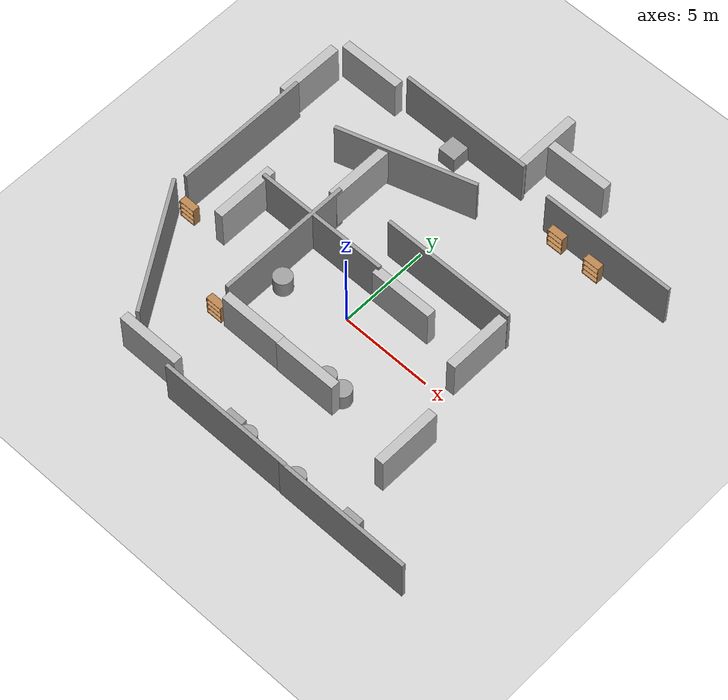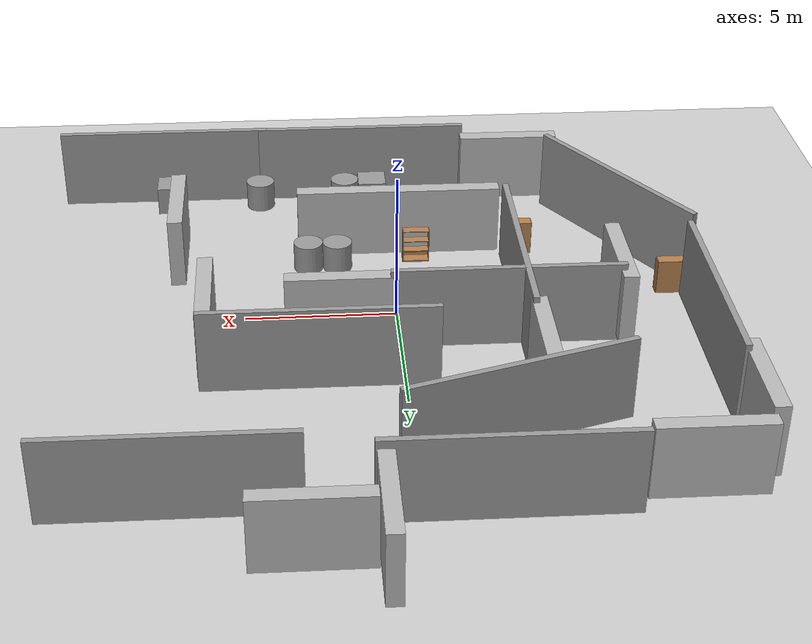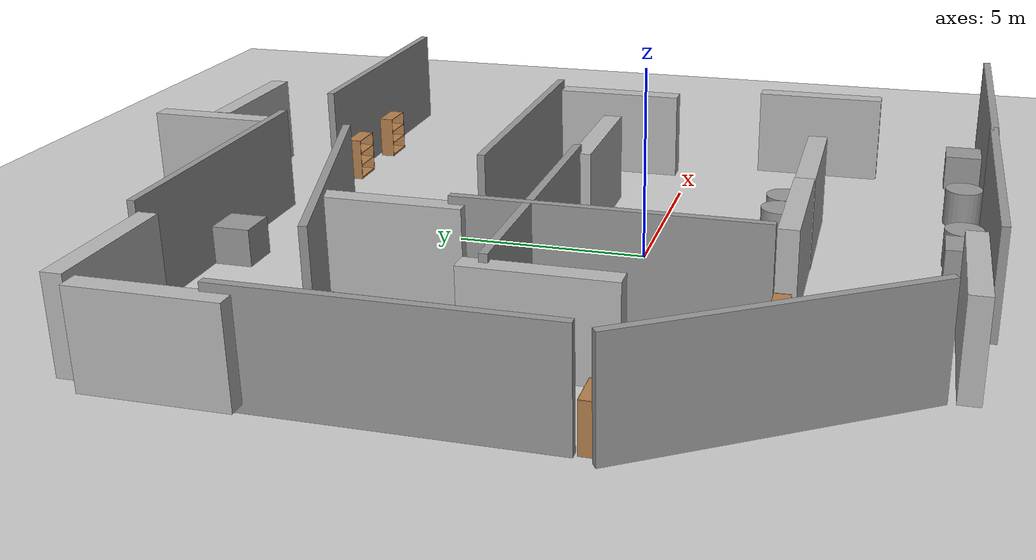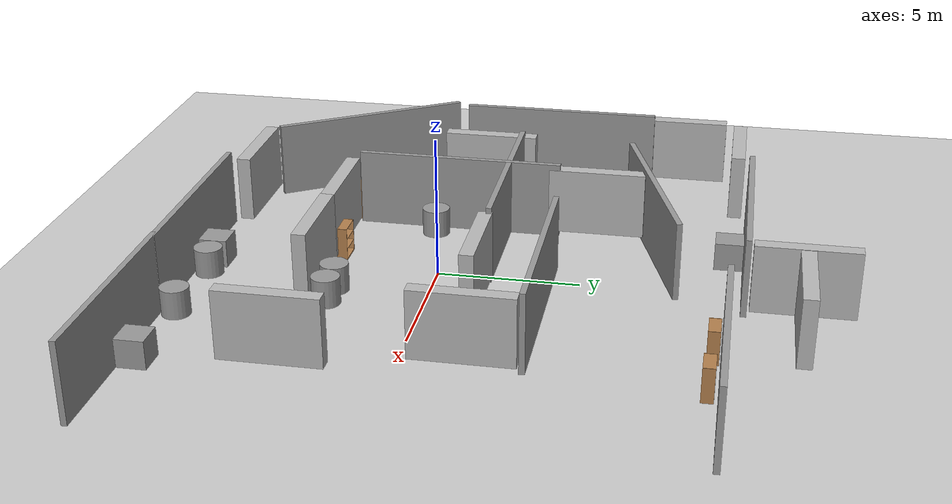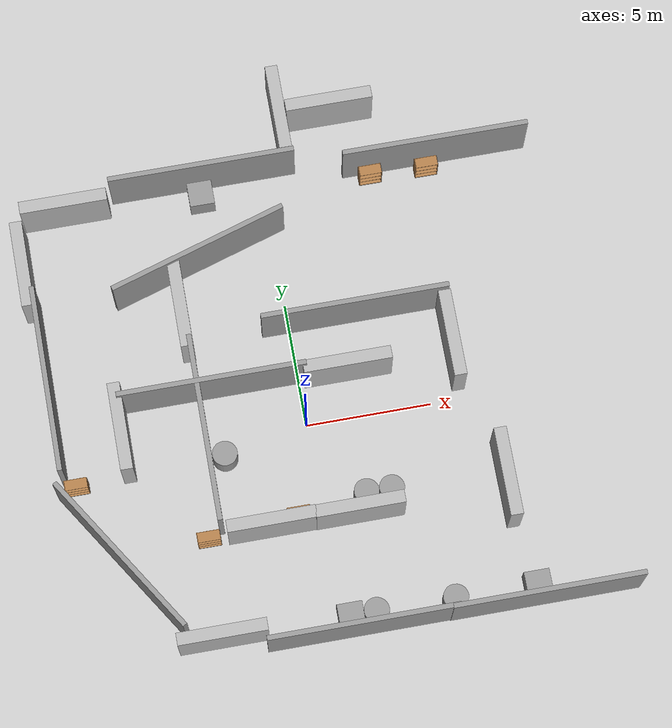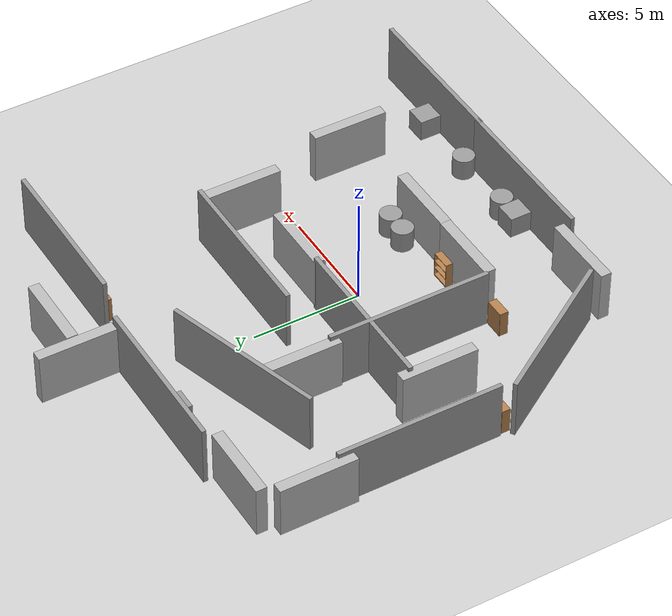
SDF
<sdf version="1.6">
 <world name="default">
  <model name="ground_plane">
   <static>1</static>
   <link name="link">
    <collision name="collision">
     <geometry><plane><normal>0 0 1</normal><size>100 100</size></plane></geometry>
     <surface><friction><ode><mu>100</mu><mu2>50</mu2></ode></friction></surface>
    </collision>
    <visual name="visual">
     <cast_shadows>0</cast_shadows>
     <geometry><plane><normal>0 0 1</normal><size>100 100</size></plane></geometry>
     <material>
      <script><uri>file://media/materials/scripts/gazebo.material</uri><name>Gazebo/Grey</name></script>
     </material>
    </visual>
   </link>
  </model>
  <model name="grey_wall">
   <static>1</static>
   <link name="link">
    <pose>0 0 1.4 0 -0 0</pose>
    <collision name="collision"><geometry><box><size>7.5 0.2 2.8</size></box></geometry></collision>
    <visual name="visual">
     <cast_shadows>0</cast_shadows>
     <geometry><box><size>7.5 0.2 2.8</size></box></geometry>
     <material>
      <script>
       <uri>model://grey_wall/materials/scripts</uri>
       <uri>model://grey_wall/materials/textures</uri>
       <name>vrc/grey_wall</name>
      </script>
     </material>
    </visual>
   </link>
   <pose>-2.38225 10.6143 0 0 -0 0</pose>
  </model>
  <model name="unit_box_0">
   <pose>-2.56657 10.0143 0.5 0 0 -1e-05</pose>
   <link name="link">
    <inertial>
     <mass>1</mass>
     <inertia>
      <ixx>0.166667</ixx>
      <ixy>0</ixy>
      <ixz>0</ixz>
      <iyy>0.166667</iyy>
      <iyz>0</iyz>
      <izz>0.166667</izz>
     </inertia>
    </inertial>
    <collision name="collision"><geometry><box><size>1 1 1</size></box></geometry></collision>
    <visual name="visual">
     <geometry><box><size>1 1 1</size></box></geometry>
     <material>
      <script><name>Gazebo/Grey</name><uri>file://media/materials/scripts/gazebo.material</uri></script>
     </material>
    </visual>
   </link>
  </model>
  <model name="grey_wall_0">
   <static>1</static>
   <link name="link">
    <pose>0 0 1.4 0 -0 0</pose>
    <collision name="collision"><geometry><box><size>7.5 0.2 2.8</size></box></geometry></collision>
    <visual name="visual">
     <cast_shadows>0</cast_shadows>
     <geometry><box><size>7.5 0.2 2.8</size></box></geometry>
     <material>
      <script>
       <uri>model://grey_wall/materials/scripts</uri>
       <uri>model://grey_wall/materials/textures</uri>
       <name>vrc/grey_wall</name>
      </script>
     </material>
    </visual>
   </link>
   <pose>7 10.0868 0 0 -0 0</pose>
  </model>
  <model name="bookshelf_0">
   <static>1</static>
   <link name="link">
    <inertial><mass>1</mass></inertial>
    <collision name="back">
     <pose>0 0.005 0.6 0 -0 0</pose>
     <geometry><box><size>0.9 0.01 1.2</size></box></geometry>
    </collision>
    <visual name="visual1">
     <pose>0 0.005 0.6 0 -0 0</pose>
     <geometry><box><size>0.9 0.01 1.2</size></box></geometry>
     <material>
      <script><uri>file://media/materials/scripts/gazebo.material</uri><name>Gazebo/Wood</name></script>
     </material>
    </visual>
    <collision name="left_side">
     <pose>0.45 -0.195 0.6 0 -0 0</pose>
     <geometry><box><size>0.02 0.4 1.2</size></box></geometry>
    </collision>
    <visual name="visual2">
     <pose>0.45 -0.195 0.6 0 -0 0</pose>
     <geometry><box><size>0.02 0.4 1.2</size></box></geometry>
     <material>
      <script><uri>file://media/materials/scripts/gazebo.material</uri><name>Gazebo/Wood</name></script>
     </material>
    </visual>
    <collision name="right_side">
     <pose>-0.45 -0.195 0.6 0 -0 0</pose>
     <geometry><box><size>0.02 0.4 1.2</size></box></geometry>
    </collision>
    <visual name="visual3">
     <pose>-0.45 -0.195 0.6 0 -0 0</pose>
     <geometry><box><size>0.02 0.4 1.2</size></box></geometry>
     <material>
      <script><uri>file://media/materials/scripts/gazebo.material</uri><name>Gazebo/Wood</name></script>
     </material>
    </visual>
    <collision name="bottom">
     <pose>0 -0.195 0.03 0 -0 0</pose>
     <geometry><box><size>0.88 0.4 0.06</size></box></geometry>
    </collision>
    <visual name="visual4">
     <pose>0 -0.195 0.03 0 -0 0</pose>
     <geometry><box><size>0.88 0.4 0.06</size></box></geometry>
     <material>
      <script><uri>file://media/materials/scripts/gazebo.material</uri><name>Gazebo/Wood</name></script>
     </material>
    </visual>
    <collision name="top">
     <pose>0 -0.195 1.19 0 -0 0</pose>
     <geometry><box><size>0.88 0.4 0.02</size></box></geometry>
    </collision>
    <visual name="visual5">
     <pose>0 -0.195 1.19 0 -0 0</pose>
     <geometry><box><size>0.88 0.4 0.02</size></box></geometry>
     <material>
      <script><uri>file://media/materials/scripts/gazebo.material</uri><name>Gazebo/Wood</name></script>
     </material>
    </visual>
    <collision name="low_shelf">
     <pose>0 -0.195 0.43 0 -0 0</pose>
     <geometry><box><size>0.88 0.4 0.02</size></box></geometry>
    </collision>
    <visual name="visual6">
     <pose>0 -0.195 0.43 0 -0 0</pose>
     <geometry><box><size>0.88 0.4 0.02</size></box></geometry>
     <material>
      <script><uri>file://media/materials/scripts/gazebo.material</uri><name>Gazebo/Wood</name></script>
     </material>
    </visual>
    <collision name="high_shelf">
     <pose>0 -0.195 0.8 0 -0 0</pose>
     <geometry><box><size>0.88 0.4 0.02</size></box></geometry>
    </collision>
    <visual name="visual7">
     <pose>0 -0.195 0.8 0 -0 0</pose>
     <geometry><box><size>0.88 0.4 0.02</size></box></geometry>
     <material>
      <script><uri>file://media/materials/scripts/gazebo.material</uri><name>Gazebo/Wood</name></script>
     </material>
    </visual>
   </link>
   <pose>4.33067 9.93272 0 0 -0 0</pose>
  </model>
  <model name="bookshelf_1">
   <static>1</static>
   <link name="link">
    <inertial><mass>1</mass></inertial>
    <collision name="back">
     <pose>0 0.005 0.6 0 -0 0</pose>
     <geometry><box><size>0.9 0.01 1.2</size></box></geometry>
    </collision>
    <visual name="visual1">
     <pose>0 0.005 0.6 0 -0 0</pose>
     <geometry><box><size>0.9 0.01 1.2</size></box></geometry>
     <material>
      <script><uri>file://media/materials/scripts/gazebo.material</uri><name>Gazebo/Wood</name></script>
     </material>
    </visual>
    <collision name="left_side">
     <pose>0.45 -0.195 0.6 0 -0 0</pose>
     <geometry><box><size>0.02 0.4 1.2</size></box></geometry>
    </collision>
    <visual name="visual2">
     <pose>0.45 -0.195 0.6 0 -0 0</pose>
     <geometry><box><size>0.02 0.4 1.2</size></box></geometry>
     <material>
      <script><uri>file://media/materials/scripts/gazebo.material</uri><name>Gazebo/Wood</name></script>
     </material>
    </visual>
    <collision name="right_side">
     <pose>-0.45 -0.195 0.6 0 -0 0</pose>
     <geometry><box><size>0.02 0.4 1.2</size></box></geometry>
    </collision>
    <visual name="visual3">
     <pose>-0.45 -0.195 0.6 0 -0 0</pose>
     <geometry><box><size>0.02 0.4 1.2</size></box></geometry>
     <material>
      <script><uri>file://media/materials/scripts/gazebo.material</uri><name>Gazebo/Wood</name></script>
     </material>
    </visual>
    <collision name="bottom">
     <pose>0 -0.195 0.03 0 -0 0</pose>
     <geometry><box><size>0.88 0.4 0.06</size></box></geometry>
    </collision>
    <visual name="visual4">
     <pose>0 -0.195 0.03 0 -0 0</pose>
     <geometry><box><size>0.88 0.4 0.06</size></box></geometry>
     <material>
      <script><uri>file://media/materials/scripts/gazebo.material</uri><name>Gazebo/Wood</name></script>
     </material>
    </visual>
    <collision name="top">
     <pose>0 -0.195 1.19 0 -0 0</pose>
     <geometry><box><size>0.88 0.4 0.02</size></box></geometry>
    </collision>
    <visual name="visual5">
     <pose>0 -0.195 1.19 0 -0 0</pose>
     <geometry><box><size>0.88 0.4 0.02</size></box></geometry>
     <material>
      <script><uri>file://media/materials/scripts/gazebo.material</uri><name>Gazebo/Wood</name></script>
     </material>
    </visual>
    <collision name="low_shelf">
     <pose>0 -0.195 0.43 0 -0 0</pose>
     <geometry><box><size>0.88 0.4 0.02</size></box></geometry>
    </collision>
    <visual name="visual6">
     <pose>0 -0.195 0.43 0 -0 0</pose>
     <geometry><box><size>0.88 0.4 0.02</size></box></geometry>
     <material>
      <script><uri>file://media/materials/scripts/gazebo.material</uri><name>Gazebo/Wood</name></script>
     </material>
    </visual>
    <collision name="high_shelf">
     <pose>0 -0.195 0.8 0 -0 0</pose>
     <geometry><box><size>0.88 0.4 0.02</size></box></geometry>
    </collision>
    <visual name="visual7">
     <pose>0 -0.195 0.8 0 -0 0</pose>
     <geometry><box><size>0.88 0.4 0.02</size></box></geometry>
     <material>
      <script><uri>file://media/materials/scripts/gazebo.material</uri><name>Gazebo/Wood</name></script>
     </material>
    </visual>
   </link>
   <pose>6.61961 9.86481 0 0 -0 0</pose>
  </model>
  <model name="grey_wall_1">
   <static>1</static>
   <link name="link">
    <pose>0 0 1.4 0 -0 0</pose>
    <collision name="collision"><geometry><box><size>7.5 0.2 2.8</size></box></geometry></collision>
    <visual name="visual">
     <cast_shadows>0</cast_shadows>
     <geometry><box><size>7.5 0.2 2.8</size></box></geometry>
     <material>
      <script>
       <uri>model://grey_wall/materials/scripts</uri>
       <uri>model://grey_wall/materials/textures</uri>
       <name>vrc/grey_wall</name>
      </script>
     </material>
    </visual>
   </link>
   <pose>-9.75377 3 0 0 -0 1.57</pose>
  </model>
  <model name="grey_wall_3">
   <static>1</static>
   <link name="link">
    <pose>0 0 1.4 0 -0 0</pose>
    <collision name="collision"><geometry><box><size>7.5 0.2 2.8</size></box></geometry></collision>
    <visual name="visual">
     <cast_shadows>0</cast_shadows>
     <geometry><box><size>7.5 0.2 2.8</size></box></geometry>
     <material>
      <script>
       <uri>model://grey_wall/materials/scripts</uri>
       <uri>model://grey_wall/materials/textures</uri>
       <name>vrc/grey_wall</name>
      </script>
     </material>
    </visual>
   </link>
   <pose>-8 -4.35516 0 0 0 -1</pose>
  </model>
  <model name="bookshelf_2">
   <static>1</static>
   <link name="link">
    <inertial><mass>1</mass></inertial>
    <collision name="back">
     <pose>0 0.005 0.6 0 -0 0</pose>
     <geometry><box><size>0.9 0.01 1.2</size></box></geometry>
    </collision>
    <visual name="visual1">
     <pose>0 0.005 0.6 0 -0 0</pose>
     <geometry><box><size>0.9 0.01 1.2</size></box></geometry>
     <material>
      <script><uri>file://media/materials/scripts/gazebo.material</uri><name>Gazebo/Wood</name></script>
     </material>
    </visual>
    <collision name="left_side">
     <pose>0.45 -0.195 0.6 0 -0 0</pose>
     <geometry><box><size>0.02 0.4 1.2</size></box></geometry>
    </collision>
    <visual name="visual2">
     <pose>0.45 -0.195 0.6 0 -0 0</pose>
     <geometry><box><size>0.02 0.4 1.2</size></box></geometry>
     <material>
      <script><uri>file://media/materials/scripts/gazebo.material</uri><name>Gazebo/Wood</name></script>
     </material>
    </visual>
    <collision name="right_side">
     <pose>-0.45 -0.195 0.6 0 -0 0</pose>
     <geometry><box><size>0.02 0.4 1.2</size></box></geometry>
    </collision>
    <visual name="visual3">
     <pose>-0.45 -0.195 0.6 0 -0 0</pose>
     <geometry><box><size>0.02 0.4 1.2</size></box></geometry>
     <material>
      <script><uri>file://media/materials/scripts/gazebo.material</uri><name>Gazebo/Wood</name></script>
     </material>
    </visual>
    <collision name="bottom">
     <pose>0 -0.195 0.03 0 -0 0</pose>
     <geometry><box><size>0.88 0.4 0.06</size></box></geometry>
    </collision>
    <visual name="visual4">
     <pose>0 -0.195 0.03 0 -0 0</pose>
     <geometry><box><size>0.88 0.4 0.06</size></box></geometry>
     <material>
      <script><uri>file://media/materials/scripts/gazebo.material</uri><name>Gazebo/Wood</name></script>
     </material>
    </visual>
    <collision name="top">
     <pose>0 -0.195 1.19 0 -0 0</pose>
     <geometry><box><size>0.88 0.4 0.02</size></box></geometry>
    </collision>
    <visual name="visual5">
     <pose>0 -0.195 1.19 0 -0 0</pose>
     <geometry><box><size>0.88 0.4 0.02</size></box></geometry>
     <material>
      <script><uri>file://media/materials/scripts/gazebo.material</uri><name>Gazebo/Wood</name></script>
     </material>
    </visual>
    <collision name="low_shelf">
     <pose>0 -0.195 0.43 0 -0 0</pose>
     <geometry><box><size>0.88 0.4 0.02</size></box></geometry>
    </collision>
    <visual name="visual6">
     <pose>0 -0.195 0.43 0 -0 0</pose>
     <geometry><box><size>0.88 0.4 0.02</size></box></geometry>
     <material>
      <script><uri>file://media/materials/scripts/gazebo.material</uri><name>Gazebo/Wood</name></script>
     </material>
    </visual>
    <collision name="high_shelf">
     <pose>0 -0.195 0.8 0 -0 0</pose>
     <geometry><box><size>0.88 0.4 0.02</size></box></geometry>
    </collision>
    <visual name="visual7">
     <pose>0 -0.195 0.8 0 -0 0</pose>
     <geometry><box><size>0.88 0.4 0.02</size></box></geometry>
     <material>
      <script><uri>file://media/materials/scripts/gazebo.material</uri><name>Gazebo/Wood</name></script>
     </material>
    </visual>
   </link>
   <pose>-9.31763 -0.823103 0 0 -0 0</pose>
  </model>
  <model name="grey_wall_4">
   <static>1</static>
   <link name="link">
    <pose>0 0 1.4 0 -0 0</pose>
    <collision name="collision"><geometry><box><size>7.5 0.2 2.8</size></box></geometry></collision>
    <visual name="visual">
     <cast_shadows>0</cast_shadows>
     <geometry><box><size>7.5 0.2 2.8</size></box></geometry>
     <material>
      <script>
       <uri>model://grey_wall/materials/scripts</uri>
       <uri>model://grey_wall/materials/textures</uri>
       <name>vrc/grey_wall</name>
      </script>
     </material>
    </visual>
   </link>
   <pose>0.732873 -8.54775 0 0 -0 0</pose>
  </model>
  <model name="grey_wall_5">
   <static>1</static>
   <link name="link">
    <pose>0 0 1.4 0 -0 0</pose>
    <collision name="collision"><geometry><box><size>7.5 0.2 2.8</size></box></geometry></collision>
    <visual name="visual">
     <cast_shadows>0</cast_shadows>
     <geometry><box><size>7.5 0.2 2.8</size></box></geometry>
     <material>
      <script>
       <uri>model://grey_wall/materials/scripts</uri>
       <uri>model://grey_wall/materials/textures</uri>
       <name>vrc/grey_wall</name>
      </script>
     </material>
    </visual>
   </link>
   <pose>7.91479 -8.57466 0 0 -0 0</pose>
  </model>
  <model name="unit_box_1_1">
   <pose>0.35925 -7.94761 0.499995 0 1e-05 0.000272</pose>
   <link name="link">
    <inertial>
     <mass>1</mass>
     <inertia>
      <ixx>0.166667</ixx>
      <ixy>0</ixy>
      <ixz>0</ixz>
      <iyy>0.166667</iyy>
      <iyz>0</iyz>
      <izz>0.166667</izz>
     </inertia>
    </inertial>
    <collision name="collision"><geometry><box><size>1 1 1</size></box></geometry></collision>
    <visual name="visual">
     <geometry><box><size>1 1 1</size></box></geometry>
     <material>
      <script><name>Gazebo/Grey</name><uri>file://media/materials/scripts/gazebo.material</uri></script>
     </material>
    </visual>
   </link>
  </model>
  <model name="unit_cylinder_0_1">
   <pose>1.35926 -7.91818 0.499994 -3e-06 -1e-06 -0.00033</pose>
   <link name="link">
    <inertial>
     <mass>1</mass>
     <inertia><ixx>0.145833</ixx><ixy>0</ixy><ixz>0</ixz><iyy>0.145833</iyy><iyz>0</iyz><izz>0.125</izz></inertia>
    </inertial>
    <collision name="collision">
     <geometry><cylinder><radius>0.5</radius><length>1</length></cylinder></geometry>
    </collision>
    <visual name="visual">
     <geometry><cylinder><radius>0.5</radius><length>1</length></cylinder></geometry>
     <material>
      <script><name>Gazebo/Grey</name><uri>file://media/materials/scripts/gazebo.material</uri></script>
     </material>
    </visual>
   </link>
  </model>
  <model name="unit_cylinder_0_2">
   <pose>4.46936 -7.94617 0.499994 -3e-06 -1e-06 -0</pose>
   <link name="link">
    <inertial>
     <mass>1</mass>
     <inertia><ixx>0.145833</ixx><ixy>0</ixy><ixz>0</ixz><iyy>0.145833</iyy><iyz>0</iyz><izz>0.125</izz></inertia>
    </inertial>
    <collision name="collision">
     <geometry><cylinder><radius>0.5</radius><length>1</length></cylinder></geometry>
    </collision>
    <visual name="visual">
     <geometry><cylinder><radius>0.5</radius><length>1</length></cylinder></geometry>
     <material>
      <script><name>Gazebo/Grey</name><uri>file://media/materials/scripts/gazebo.material</uri></script>
     </material>
    </visual>
   </link>
  </model>
  <model name="unit_box_1_2">
   <pose>7.72225 -7.97465 0.499995 0 -1e-05 7e-06</pose>
   <link name="link">
    <inertial>
     <mass>1</mass>
     <inertia>
      <ixx>0.166667</ixx>
      <ixy>0</ixy>
      <ixz>0</ixz>
      <iyy>0.166667</iyy>
      <iyz>0</iyz>
      <izz>0.166667</izz>
     </inertia>
    </inertial>
    <collision name="collision"><geometry><box><size>1 1 1</size></box></geometry></collision>
    <visual name="visual">
     <geometry><box><size>1 1 1</size></box></geometry>
     <material>
      <script><name>Gazebo/Grey</name><uri>file://media/materials/scripts/gazebo.material</uri></script>
     </material>
    </visual>
   </link>
  </model>
  <model name="grey_wall_6">
   <static>1</static>
   <link name="link">
    <pose>0 0 1.4 0 -0 0</pose>
    <collision name="collision"><geometry><box><size>7.5 0.2 2.8</size></box></geometry></collision>
    <visual name="visual">
     <cast_shadows>0</cast_shadows>
     <geometry><box><size>7.5 0.2 2.8</size></box></geometry>
     <material>
      <script>
       <uri>model://grey_wall/materials/scripts</uri>
       <uri>model://grey_wall/materials/textures</uri>
       <name>vrc/grey_wall</name>
      </script>
     </material>
    </visual>
   </link>
   <pose>-3.07893 7.22093 0 0 -0 0.3</pose>
  </model>
  <model name="grey_wall_7">
   <static>1</static>
   <link name="link">
    <pose>0 0 1.4 0 -0 0</pose>
    <collision name="collision"><geometry><box><size>7.5 0.2 2.8</size></box></geometry></collision>
    <visual name="visual">
     <cast_shadows>0</cast_shadows>
     <geometry><box><size>7.5 0.2 2.8</size></box></geometry>
     <material>
      <script>
       <uri>model://grey_wall/materials/scripts</uri>
       <uri>model://grey_wall/materials/textures</uri>
       <name>vrc/grey_wall</name>
      </script>
     </material>
    </visual>
   </link>
   <pose>-4 0 0 0 -0 1.57</pose>
  </model>
  <model name="grey_wall_8">
   <static>1</static>
   <link name="link">
    <pose>0 0 1.4 0 -0 0</pose>
    <collision name="collision"><geometry><box><size>7.5 0.2 2.8</size></box></geometry></collision>
    <visual name="visual">
     <cast_shadows>0</cast_shadows>
     <geometry><box><size>7.5 0.2 2.8</size></box></geometry>
     <material>
      <script>
       <uri>model://grey_wall/materials/scripts</uri>
       <uri>model://grey_wall/materials/textures</uri>
       <name>vrc/grey_wall</name>
      </script>
     </material>
    </visual>
   </link>
   <pose>-3.41531 1.85779 0 0 -0 0</pose>
  </model>
  <model name="bookshelf_3">
   <static>1</static>
   <link name="link">
    <inertial><mass>1</mass></inertial>
    <collision name="back">
     <pose>0 0.005 0.6 0 -0 0</pose>
     <geometry><box><size>0.9 0.01 1.2</size></box></geometry>
    </collision>
    <visual name="visual1">
     <pose>0 0.005 0.6 0 -0 0</pose>
     <geometry><box><size>0.9 0.01 1.2</size></box></geometry>
     <material>
      <script><uri>file://media/materials/scripts/gazebo.material</uri><name>Gazebo/Wood</name></script>
     </material>
    </visual>
    <collision name="left_side">
     <pose>0.45 -0.195 0.6 0 -0 0</pose>
     <geometry><box><size>0.02 0.4 1.2</size></box></geometry>
    </collision>
    <visual name="visual2">
     <pose>0.45 -0.195 0.6 0 -0 0</pose>
     <geometry><box><size>0.02 0.4 1.2</size></box></geometry>
     <material>
      <script><uri>file://media/materials/scripts/gazebo.material</uri><name>Gazebo/Wood</name></script>
     </material>
    </visual>
    <collision name="right_side">
     <pose>-0.45 -0.195 0.6 0 -0 0</pose>
     <geometry><box><size>0.02 0.4 1.2</size></box></geometry>
    </collision>
    <visual name="visual3">
     <pose>-0.45 -0.195 0.6 0 -0 0</pose>
     <geometry><box><size>0.02 0.4 1.2</size></box></geometry>
     <material>
      <script><uri>file://media/materials/scripts/gazebo.material</uri><name>Gazebo/Wood</name></script>
     </material>
    </visual>
    <collision name="bottom">
     <pose>0 -0.195 0.03 0 -0 0</pose>
     <geometry><box><size>0.88 0.4 0.06</size></box></geometry>
    </collision>
    <visual name="visual4">
     <pose>0 -0.195 0.03 0 -0 0</pose>
     <geometry><box><size>0.88 0.4 0.06</size></box></geometry>
     <material>
      <script><uri>file://media/materials/scripts/gazebo.material</uri><name>Gazebo/Wood</name></script>
     </material>
    </visual>
    <collision name="top">
     <pose>0 -0.195 1.19 0 -0 0</pose>
     <geometry><box><size>0.88 0.4 0.02</size></box></geometry>
    </collision>
    <visual name="visual5">
     <pose>0 -0.195 1.19 0 -0 0</pose>
     <geometry><box><size>0.88 0.4 0.02</size></box></geometry>
     <material>
      <script><uri>file://media/materials/scripts/gazebo.material</uri><name>Gazebo/Wood</name></script>
     </material>
    </visual>
    <collision name="low_shelf">
     <pose>0 -0.195 0.43 0 -0 0</pose>
     <geometry><box><size>0.88 0.4 0.02</size></box></geometry>
    </collision>
    <visual name="visual6">
     <pose>0 -0.195 0.43 0 -0 0</pose>
     <geometry><box><size>0.88 0.4 0.02</size></box></geometry>
     <material>
      <script><uri>file://media/materials/scripts/gazebo.material</uri><name>Gazebo/Wood</name></script>
     </material>
    </visual>
    <collision name="high_shelf">
     <pose>0 -0.195 0.8 0 -0 0</pose>
     <geometry><box><size>0.88 0.4 0.02</size></box></geometry>
    </collision>
    <visual name="visual7">
     <pose>0 -0.195 0.8 0 -0 0</pose>
     <geometry><box><size>0.88 0.4 0.02</size></box></geometry>
     <material>
      <script><uri>file://media/materials/scripts/gazebo.material</uri><name>Gazebo/Wood</name></script>
     </material>
    </visual>
   </link>
   <pose>-4.55124 -3.7724 0 0 -0 0</pose>
  </model>
  <model name="unit_cylinder_0_3">
   <pose>-3.38655 -0.778176 0.499996 3e-06 1e-06 -0</pose>
   <link name="link">
    <inertial>
     <mass>1</mass>
     <inertia><ixx>0.145833</ixx><ixy>0</ixy><ixz>0</ixz><iyy>0.145833</iyy><iyz>0</iyz><izz>0.125</izz></inertia>
    </inertial>
    <collision name="collision">
     <geometry><cylinder><radius>0.5</radius><length>1</length></cylinder></geometry>
    </collision>
    <visual name="visual">
     <geometry><cylinder><radius>0.5</radius><length>1</length></cylinder></geometry>
     <material>
      <script><name>Gazebo/Grey</name><uri>file://media/materials/scripts/gazebo.material</uri></script>
     </material>
    </visual>
   </link>
  </model>
  <model name="bookshelf_4">
   <static>1</static>
   <link name="link">
    <inertial><mass>1</mass></inertial>
    <collision name="back">
     <pose>0 0.005 0.6 0 -0 0</pose>
     <geometry><box><size>0.9 0.01 1.2</size></box></geometry>
    </collision>
    <visual name="visual1">
     <pose>0 0.005 0.6 0 -0 0</pose>
     <geometry><box><size>0.9 0.01 1.2</size></box></geometry>
     <material>
      <script><uri>file://media/materials/scripts/gazebo.material</uri><name>Gazebo/Wood</name></script>
     </material>
    </visual>
    <collision name="left_side">
     <pose>0.45 -0.195 0.6 0 -0 0</pose>
     <geometry><box><size>0.02 0.4 1.2</size></box></geometry>
    </collision>
    <visual name="visual2">
     <pose>0.45 -0.195 0.6 0 -0 0</pose>
     <geometry><box><size>0.02 0.4 1.2</size></box></geometry>
     <material>
      <script><uri>file://media/materials/scripts/gazebo.material</uri><name>Gazebo/Wood</name></script>
     </material>
    </visual>
    <collision name="right_side">
     <pose>-0.45 -0.195 0.6 0 -0 0</pose>
     <geometry><box><size>0.02 0.4 1.2</size></box></geometry>
    </collision>
    <visual name="visual3">
     <pose>-0.45 -0.195 0.6 0 -0 0</pose>
     <geometry><box><size>0.02 0.4 1.2</size></box></geometry>
     <material>
      <script><uri>file://media/materials/scripts/gazebo.material</uri><name>Gazebo/Wood</name></script>
     </material>
    </visual>
    <collision name="bottom">
     <pose>0 -0.195 0.03 0 -0 0</pose>
     <geometry><box><size>0.88 0.4 0.06</size></box></geometry>
    </collision>
    <visual name="visual4">
     <pose>0 -0.195 0.03 0 -0 0</pose>
     <geometry><box><size>0.88 0.4 0.06</size></box></geometry>
     <material>
      <script><uri>file://media/materials/scripts/gazebo.material</uri><name>Gazebo/Wood</name></script>
     </material>
    </visual>
    <collision name="top">
     <pose>0 -0.195 1.19 0 -0 0</pose>
     <geometry><box><size>0.88 0.4 0.02</size></box></geometry>
    </collision>
    <visual name="visual5">
     <pose>0 -0.195 1.19 0 -0 0</pose>
     <geometry><box><size>0.88 0.4 0.02</size></box></geometry>
     <material>
      <script><uri>file://media/materials/scripts/gazebo.material</uri><name>Gazebo/Wood</name></script>
     </material>
    </visual>
    <collision name="low_shelf">
     <pose>0 -0.195 0.43 0 -0 0</pose>
     <geometry><box><size>0.88 0.4 0.02</size></box></geometry>
    </collision>
    <visual name="visual6">
     <pose>0 -0.195 0.43 0 -0 0</pose>
     <geometry><box><size>0.88 0.4 0.02</size></box></geometry>
     <material>
      <script><uri>file://media/materials/scripts/gazebo.material</uri><name>Gazebo/Wood</name></script>
     </material>
    </visual>
    <collision name="high_shelf">
     <pose>0 -0.195 0.8 0 -0 0</pose>
     <geometry><box><size>0.88 0.4 0.02</size></box></geometry>
    </collision>
    <visual name="visual7">
     <pose>0 -0.195 0.8 0 -0 0</pose>
     <geometry><box><size>0.88 0.4 0.02</size></box></geometry>
     <material>
      <script><uri>file://media/materials/scripts/gazebo.material</uri><name>Gazebo/Wood</name></script>
     </material>
    </visual>
   </link>
   <pose>-0.924476 -3.8 0 0 -0 3.14</pose>
  </model>
  <model name="unit_cylinder_0_4">
   <pose>1.82135 -3.23102 0.50045 -0.000753 -0.000505 -0.030917</pose>
   <link name="link">
    <inertial>
     <mass>1</mass>
     <inertia><ixx>0.145833</ixx><ixy>0</ixy><ixz>0</ixz><iyy>0.145833</iyy><iyz>0</iyz><izz>0.125</izz></inertia>
    </inertial>
    <collision name="collision">
     <geometry><cylinder><radius>0.5</radius><length>1</length></cylinder></geometry>
    </collision>
    <visual name="visual">
     <geometry><cylinder><radius>0.5</radius><length>1</length></cylinder></geometry>
     <material>
      <script><name>Gazebo/Grey</name><uri>file://media/materials/scripts/gazebo.material</uri></script>
     </material>
    </visual>
   </link>
  </model>
  <model name="unit_cylinder_0_5">
   <pose>2.8235 -3.25312 0.499993 -3e-06 -1e-06 -0.035597</pose>
   <link name="link">
    <inertial>
     <mass>1</mass>
     <inertia><ixx>0.145833</ixx><ixy>0</ixy><ixz>0</ixz><iyy>0.145833</iyy><iyz>0</iyz><izz>0.125</izz></inertia>
    </inertial>
    <collision name="collision">
     <geometry><cylinder><radius>0.5</radius><length>1</length></cylinder></geometry>
    </collision>
    <visual name="visual">
     <geometry><cylinder><radius>0.5</radius><length>1</length></cylinder></geometry>
     <material>
      <script><name>Gazebo/Grey</name><uri>file://media/materials/scripts/gazebo.material</uri></script>
     </material>
    </visual>
   </link>
  </model>
  <model name="grey_wall_9">
   <static>1</static>
   <link name="link">
    <pose>0 0 1.4 0 -0 0</pose>
    <collision name="collision"><geometry><box><size>7.5 0.2 2.8</size></box></geometry></collision>
    <visual name="visual">
     <cast_shadows>0</cast_shadows>
     <geometry><box><size>7.5 0.2 2.8</size></box></geometry>
     <material>
      <script>
       <uri>model://grey_wall/materials/scripts</uri>
       <uri>model://grey_wall/materials/textures</uri>
       <name>vrc/grey_wall</name>
      </script>
     </material>
    </visual>
   </link>
   <pose>2.64896 3.98891 0 0 -0 0</pose>
  </model>
  <model name="mywall1">
   <static>1</static>
   <link name="link">
    <pose>0 0 1.4 0 -0 0</pose>
    <collision name="collision"><geometry><box><size>3.5 0.5 2.4</size></box></geometry></collision>
    <visual name="visual">
     <cast_shadows>0</cast_shadows>
     <geometry><box><size>3.5 0.5 2.4</size></box></geometry>
     <material>
      <script>
       <uri>model://mywall1/materials/scripts</uri>
       <uri>model://mywall1/materials/textures</uri>
       <name>vrc/mywall1</name>
      </script>
     </material>
    </visual>
   </link>
   <pose>-10 7.81498 0 0 -0 1.57</pose>
  </model>
  <model name="mywall1_0">
   <static>1</static>
   <link name="link">
    <pose>0 0 1.4 0 -0 0</pose>
    <collision name="collision"><geometry><box><size>3.5 0.5 2.4</size></box></geometry></collision>
    <visual name="visual">
     <cast_shadows>0</cast_shadows>
     <geometry><box><size>3.5 0.5 2.4</size></box></geometry>
     <material>
      <script>
       <uri>model://mywall1/materials/scripts</uri>
       <uri>model://mywall1/materials/textures</uri>
       <name>vrc/mywall1</name>
      </script>
     </material>
    </visual>
   </link>
   <pose>-4.64369 -7.96757 0 0 -0 0</pose>
  </model>
  <model name="mywall1_clone">
   <static>1</static>
   <link name="link">
    <pose>0 0 1.4 0 -0 0</pose>
    <collision name="collision"><geometry><box><size>3.5 0.5 2.4</size></box></geometry></collision>
    <visual name="visual">
     <cast_shadows>0</cast_shadows>
     <geometry><box><size>3.5 0.5 2.4</size></box></geometry>
     <material>
      <script>
       <uri>model://mywall1/materials/scripts</uri>
       <uri>model://mywall1/materials/textures</uri>
       <name>vrc/mywall1</name>
      </script>
     </material>
    </visual>
   </link>
   <pose>-4.12656 5.09862 0 0 -0 1.57</pose>
  </model>
  <model name="mywall1_0_clone">
   <static>1</static>
   <link name="link">
    <pose>0 0 1.4 0 -0 0</pose>
    <collision name="collision"><geometry><box><size>3.5 0.5 2.4</size></box></geometry></collision>
    <visual name="visual">
     <cast_shadows>0</cast_shadows>
     <geometry><box><size>3.5 0.5 2.4</size></box></geometry>
     <material>
      <script>
       <uri>model://mywall1/materials/scripts</uri>
       <uri>model://mywall1/materials/textures</uri>
       <name>vrc/mywall1</name>
      </script>
     </material>
    </visual>
   </link>
   <pose>1.93916 1.732 0 0 -0 0</pose>
  </model>
  <model name="mywall0_1">
   <static>1</static>
   <link name="link">
    <pose>0 0 1.4 0 -0 0</pose>
    <collision name="collision"><geometry><box><size>3.5 0.5 2.4</size></box></geometry></collision>
    <visual name="visual">
     <cast_shadows>0</cast_shadows>
     <geometry><box><size>3.5 0.5 2.4</size></box></geometry>
     <material>
      <script>
       <uri>model://mywall0/materials/scripts</uri>
       <uri>model://mywall0/materials/textures</uri>
       <name>vrc/mywall0</name>
      </script>
     </material>
    </visual>
   </link>
   <pose>-8.01801 10.1087 0 0 -0 0</pose>
  </model>
  <model name="mywall0_3">
   <static>1</static>
   <link name="link">
    <pose>0 0 1.4 0 -0 0</pose>
    <collision name="collision"><geometry><box><size>3.5 0.5 2.4</size></box></geometry></collision>
    <visual name="visual">
     <cast_shadows>0</cast_shadows>
     <geometry><box><size>3.5 0.5 2.4</size></box></geometry>
     <material>
      <script>
       <uri>model://mywall0/materials/scripts</uri>
       <uri>model://mywall0/materials/textures</uri>
       <name>vrc/mywall0</name>
      </script>
     </material>
    </visual>
   </link>
   <pose>-2.05825 -3.99563 0 0 -0 0</pose>
  </model>
  <model name="mywall1_1">
   <static>1</static>
   <link name="link">
    <pose>0 0 1.4 0 -0 0</pose>
    <collision name="collision"><geometry><box><size>3.5 0.5 2.4</size></box></geometry></collision>
    <visual name="visual">
     <cast_shadows>0</cast_shadows>
     <geometry><box><size>3.5 0.5 2.4</size></box></geometry>
     <material>
      <script>
       <uri>model://mywall1/materials/scripts</uri>
       <uri>model://mywall1/materials/textures</uri>
       <name>vrc/mywall1</name>
      </script>
     </material>
    </visual>
   </link>
   <pose>1.40479 -4.01421 0 0 -0 0</pose>
  </model>
  <model name="mywall0_4">
   <static>1</static>
   <link name="link">
    <pose>0 0 1.4 0 -0 0</pose>
    <collision name="collision"><geometry><box><size>3.5 0.5 2.4</size></box></geometry></collision>
    <visual name="visual">
     <cast_shadows>0</cast_shadows>
     <geometry><box><size>3.5 0.5 2.4</size></box></geometry>
     <material>
      <script>
       <uri>model://mywall0/materials/scripts</uri>
       <uri>model://mywall0/materials/textures</uri>
       <name>vrc/mywall0</name>
      </script>
     </material>
    </visual>
   </link>
   <pose>-7.21106 0.63994 0 0 -0 1.57</pose>
  </model>
  <model name="mywall0_5">
   <static>1</static>
   <link name="link">
    <pose>0 0 1.4 0 -0 0</pose>
    <collision name="collision"><geometry><box><size>3.5 0.5 2.4</size></box></geometry></collision>
    <visual name="visual">
     <cast_shadows>0</cast_shadows>
     <geometry><box><size>3.5 0.5 2.4</size></box></geometry>
     <material>
      <script>
       <uri>model://mywall0/materials/scripts</uri>
       <uri>model://mywall0/materials/textures</uri>
       <name>vrc/mywall0</name>
      </script>
     </material>
    </visual>
   </link>
   <pose>7.25641 -3.74588 0 0 -0 1.57</pose>
  </model>
  <model name="mywall0_5_clone">
   <static>1</static>
   <link name="link">
    <pose>0 0 1.4 0 -0 0</pose>
    <collision name="collision"><geometry><box><size>3.5 0.5 2.4</size></box></geometry></collision>
    <visual name="visual">
     <cast_shadows>0</cast_shadows>
     <geometry><box><size>3.5 0.5 2.4</size></box></geometry>
     <material>
      <script>
       <uri>model://mywall0/materials/scripts</uri>
       <uri>model://mywall0/materials/textures</uri>
       <name>vrc/mywall0</name>
      </script>
     </material>
    </visual>
   </link>
   <pose>6.17861 2.08716 0 0 -0 1.57</pose>
  </model>
  <model name="mywall0_4_clone">
   <static>1</static>
   <link name="link">
    <pose>0 0 1.4 0 -0 0</pose>
    <collision name="collision"><geometry><box><size>3.5 0.5 2.4</size></box></geometry></collision>
    <visual name="visual">
     <cast_shadows>0</cast_shadows>
     <geometry><box><size>3.5 0.5 2.4</size></box></geometry>
     <material>
      <script>
       <uri>model://mywall0/materials/scripts</uri>
       <uri>model://mywall0/materials/textures</uri>
       <name>vrc/mywall0</name>
      </script>
     </material>
    </visual>
   </link>
   <pose>1.07541 12.5429 0 0 -0 1.57</pose>
  </model>
  <model name="mywall1_0_clone_clone_0">
   <static>1</static>
   <link name="link">
    <pose>0 0 1.4 0 -0 0</pose>
    <collision name="collision"><geometry><box><size>3.5 0.5 2.4</size></box></geometry></collision>
    <visual name="visual">
     <cast_shadows>0</cast_shadows>
     <geometry><box><size>3.5 0.5 2.4</size></box></geometry>
     <material>
      <script>
       <uri>model://mywall1/materials/scripts</uri>
       <uri>model://mywall1/materials/textures</uri>
       <name>vrc/mywall1</name>
      </script>
     </material>
    </visual>
   </link>
   <pose>3.10869 12.5315 0 0 -0 0</pose>
  </model>
 </world>
</sdf>
